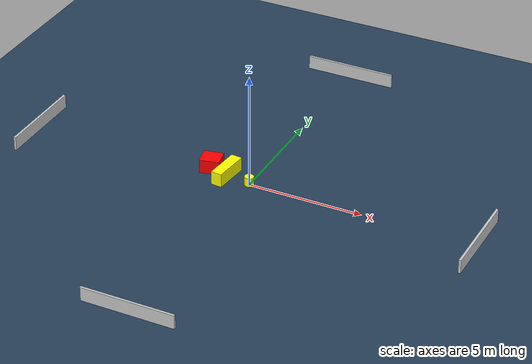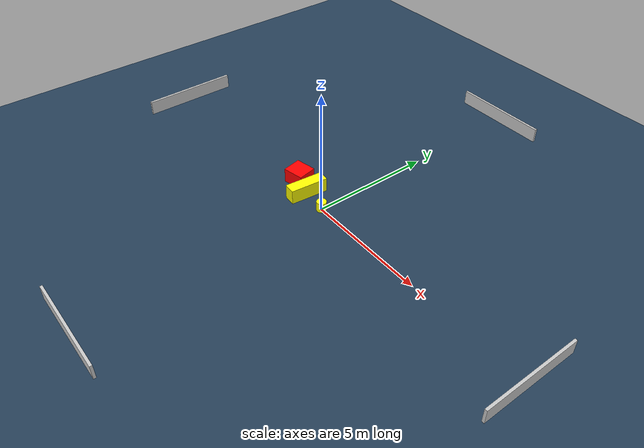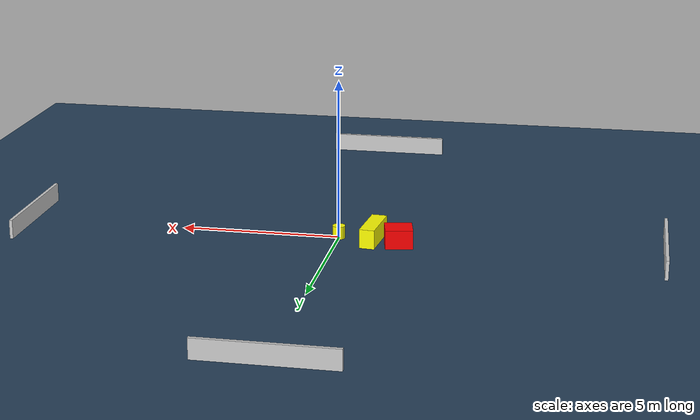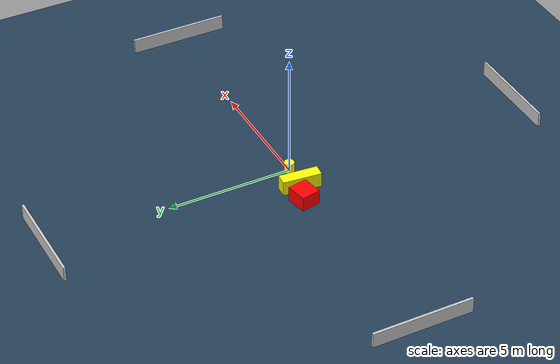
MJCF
<?xml version="1.0" ?>
<mujoco model="generated_environment">
  <option timestep="0.01" integrator="RK4" cone="elliptic"/>
  <default>
    <geom density="1"/>
  </default>
  <asset>
    <texture builtin="gradient" height="3072" name="skybox" rgb1="0.3 0.5 0.7" rgb2="0 0 0" type="skybox" width="512"/>
    <texture builtin="checker" height="300" name="groundplane" rgb1="0.2 0.3 0.4" rgb2="0.1 0.2 0.3" type="2d" width="300"/>
    <material name="groundplane" reflectance="0.2" texrepeat="5 5" texture="groundplane"/>
  </asset>
  <worldbody>
    <light dir="0 0 -1" directional="true" pos="0 0 1.5"/>
    <geom condim="3" friction="0.5 0.005 0.001" material="groundplane" name="floor" pos="0 0 0" size="0 0 0.05" type="plane"/>
    <body name="walls">
      <geom name="wall_1" condim="4" pos="-10.0 0.0 0.3" rgba="0.800000011920929 0.800000011920929 0.800000011920929 1.0" size="0.05 2.0 0.3" type="box"/>
      <geom name="wall_2" condim="4" pos="10.0 0.0 0.3" rgba="0.800000011920929 0.800000011920929 0.800000011920929 1.0" size="0.05 2.0 0.3" type="box"/>
      <geom name="wall_3" condim="4" pos="0.0 -10.0 0.3" rgba="0.800000011920929 0.800000011920929 0.800000011920929 1.0" size="2.0 0.05 0.3" type="box"/>
      <geom name="wall_4" condim="4" pos="0.0 10.0 0.3" rgba="0.800000011920929 0.800000011920929 0.800000011920929 1.0" size="2.0 0.05 0.3" type="box"/>
    </body>
    <body name="robot">
      <joint name="joint_x" type="slide" pos="0 0 0" axis="1 0 0"/>
      <joint name="joint_y" type="slide" pos="0 0 0" axis="0 1 0"/>
      <geom name="robot" type="cylinder" pos="0.0 0.0 0.2" size="0.2 0.2 0.0" mass="5.0" friction="1.0 0.005 0.0001" condim="4" rgba="1.0 1.0 0.0 1.0"/>
    </body>
    <body name="obstacle_1_movable">
      <geom name="obstacle_1_movable" condim="4" pos="-1.0971982196021766 0.10775069808285019 0.3" euler="0 0 174.49671753957776" friction="0.0 0.005 0.001" rgba="1.0 1.0 0.0 1.0" size="0.23835751913765862 0.7788176642396023 0.3" type="box" mass="0.1"/>
      <joint type="free"/>
    </body>
    <body name="obstacle_2_static">
      <geom name="obstacle_2_static" condim="4" pos="-1.9338561474191038 0.382876009503703 0.3" euler="0 0 191.47071139508452" friction="0.0 0.005 0.001" rgba="1.0 0.0 0.0 1.0" size="0.42820600583191654 0.3937740513689597 0.3" type="box"/>
    </body>
  </worldbody>
  <actuator>
    <motor name="actuator_x" joint="joint_x" gear="1" ctrlrange="-1 1"/>
    <motor name="actuator_y" joint="joint_y" gear="1" ctrlrange="-1 1"/>
  </actuator>
</mujoco>
